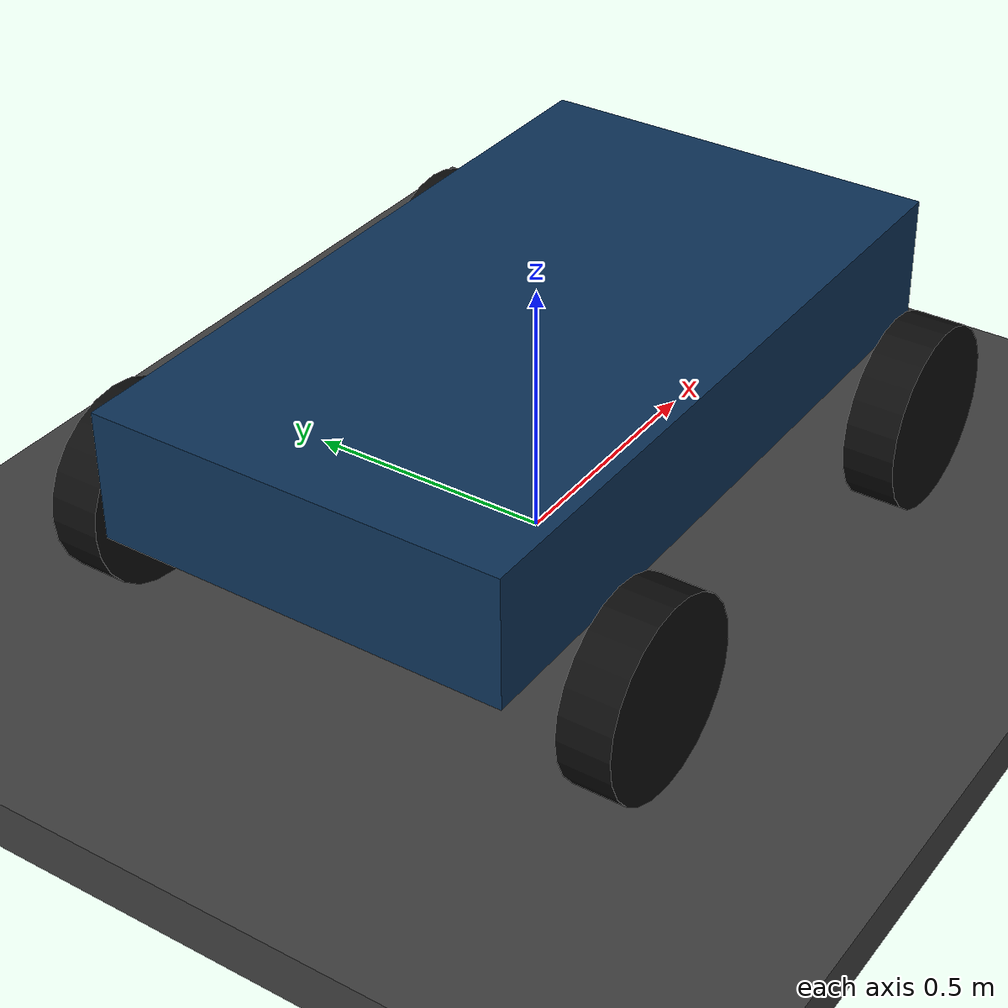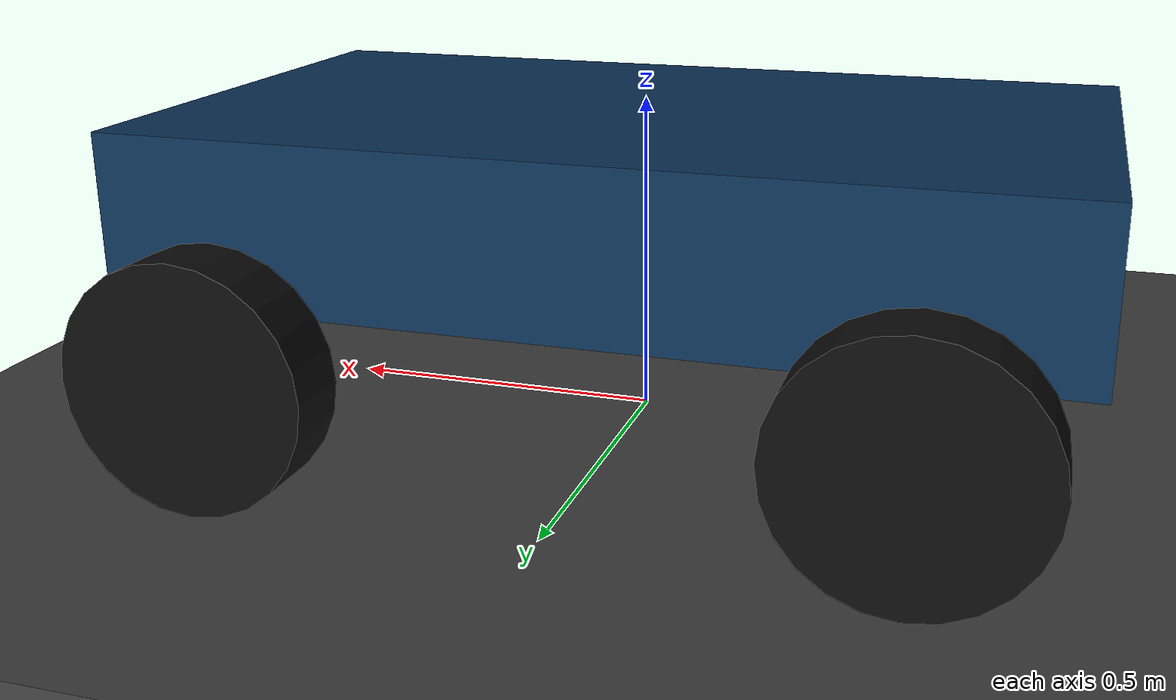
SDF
<?xml version="1.0" encoding="UTF-8"?>
<sdf version="1.9">
  <world name="rover_world">

    <gravity>0 0 -9.8</gravity>
    <magnetic_field>6e-6 2.3e-5 -4.2e-5</magnetic_field>

    <physics name="1ms" type="ode">
      <max_step_size>0.001</max_step_size>
      <real_time_factor>1</real_time_factor>
      <real_time_update_rate>1000</real_time_update_rate>
    </physics>

    <scene>
      <ambient>0.4 0.4 0.4 1</ambient>
      <background>0.7 0.75 0.8 1</background>
      <shadows>true</shadows>
    </scene>

    <plugin filename="gz-sim-physics-system"
            name="gz::sim::systems::Physics">
      <engine>
        <filename>gz-physics-dartsim-plugin</filename>
      </engine>
    </plugin>
    <plugin filename="gz-sim-user-commands-system"
            name="gz::sim::systems::UserCommands"/>
    <plugin filename="gz-sim-scene-broadcaster-system"
            name="gz::sim::systems::SceneBroadcaster"/>
    <plugin filename="gz-sim-imu-system"
            name="gz::sim::systems::Imu"/>

    <!-- Keyboard → /cmd_vel  (enable "Key Publisher" in Gazebo GUI) -->
    <!-- Arrow Up / W -->
    <plugin filename="gz-sim-triggered-publisher-system"
            name="gz::sim::systems::TriggeredPublisher">
      <input type="gz.msgs.Int32" topic="/keyboard/keypress">
        <match field="data">16777235</match>
      </input>
      <output type="gz.msgs.Twist" topic="/cmd_vel">
        linear: {x: 0.8}, angular: {z: 0.0}
      </output>
    </plugin>
    <plugin filename="gz-sim-triggered-publisher-system"
            name="gz::sim::systems::TriggeredPublisher">
      <input type="gz.msgs.Int32" topic="/keyboard/keypress">
        <match field="data">87</match>
      </input>
      <output type="gz.msgs.Twist" topic="/cmd_vel">
        linear: {x: 0.8}, angular: {z: 0.0}
      </output>
    </plugin>
    <!-- Arrow Down / S -->
    <plugin filename="gz-sim-triggered-publisher-system"
            name="gz::sim::systems::TriggeredPublisher">
      <input type="gz.msgs.Int32" topic="/keyboard/keypress">
        <match field="data">16777237</match>
      </input>
      <output type="gz.msgs.Twist" topic="/cmd_vel">
        linear: {x: -0.8}, angular: {z: 0.0}
      </output>
    </plugin>
    <plugin filename="gz-sim-triggered-publisher-system"
            name="gz::sim::systems::TriggeredPublisher">
      <input type="gz.msgs.Int32" topic="/keyboard/keypress">
        <match field="data">83</match>
      </input>
      <output type="gz.msgs.Twist" topic="/cmd_vel">
        linear: {x: -0.8}, angular: {z: 0.0}
      </output>
    </plugin>
    <!-- Arrow Left / A -->
    <plugin filename="gz-sim-triggered-publisher-system"
            name="gz::sim::systems::TriggeredPublisher">
      <input type="gz.msgs.Int32" topic="/keyboard/keypress">
        <match field="data">16777234</match>
      </input>
      <output type="gz.msgs.Twist" topic="/cmd_vel">
        linear: {x: 0.0}, angular: {z: 0.8}
      </output>
    </plugin>
    <plugin filename="gz-sim-triggered-publisher-system"
            name="gz::sim::systems::TriggeredPublisher">
      <input type="gz.msgs.Int32" topic="/keyboard/keypress">
        <match field="data">65</match>
      </input>
      <output type="gz.msgs.Twist" topic="/cmd_vel">
        linear: {x: 0.0}, angular: {z: 0.8}
      </output>
    </plugin>
    <!-- Arrow Right / D -->
    <plugin filename="gz-sim-triggered-publisher-system"
            name="gz::sim::systems::TriggeredPublisher">
      <input type="gz.msgs.Int32" topic="/keyboard/keypress">
        <match field="data">16777236</match>
      </input>
      <output type="gz.msgs.Twist" topic="/cmd_vel">
        linear: {x: 0.0}, angular: {z: -0.8}
      </output>
    </plugin>
    <plugin filename="gz-sim-triggered-publisher-system"
            name="gz::sim::systems::TriggeredPublisher">
      <input type="gz.msgs.Int32" topic="/keyboard/keypress">
        <match field="data">68</match>
      </input>
      <output type="gz.msgs.Twist" topic="/cmd_vel">
        linear: {x: 0.0}, angular: {z: -0.8}
      </output>
    </plugin>
    <!-- Space = stop -->
    <plugin filename="gz-sim-triggered-publisher-system"
            name="gz::sim::systems::TriggeredPublisher">
      <input type="gz.msgs.Int32" topic="/keyboard/keypress">
        <match field="data">32</match>
      </input>
      <output type="gz.msgs.Twist" topic="/cmd_vel">
        linear: {x: 0.0}, angular: {z: 0.0}
      </output>
    </plugin>

    <model name="ground">
      <static>true</static>
      <pose>0 0 -0.05 0 0 0</pose>
      <link name="link">
        <collision name="collision">
          <geometry>
            <box>
              <size>100 100 0.1</size>
            </box>
          </geometry>
          <surface>
            <friction>
              <ode>
                <mu>1.0</mu>
                <mu2>1.0</mu2>
              </ode>
            </friction>
          </surface>
        </collision>
        <visual name="visual">
          <geometry>
            <box>
              <size>100 100 0.1</size>
            </box>
          </geometry>
          <material>
            <ambient>0.15 0.15 0.15 1</ambient>
            <diffuse>0.25 0.25 0.25 1</diffuse>
            <specular>0.05 0.05 0.05 1</specular>
          </material>
        </visual>
      </link>
    </model>

    <light name="sun" type="directional">
      <cast_shadows>true</cast_shadows>
      <pose>0 0 10 0 0 0</pose>
      <diffuse>0.8 0.8 0.8 1</diffuse>
      <specular>0.2 0.2 0.2 1</specular>
      <direction>-0.5 -0.5 -1</direction>
    </light>

    <model name="rover">
      <pose>0 0 0.30 0 0 0</pose>
      <self_collide>false</self_collide>

      <link name="base_link">
        <inertial>
          <mass>8.0</mass>
          <inertia>
            <ixx>0.47</ixx>
            <iyy>1.35</iyy>
            <izz>1.73</izz>
            <ixy>0</ixy>
            <ixz>0</ixz>
            <iyz>0</iyz>
          </inertia>
        </inertial>
        <collision name="base_collision">
          <pose>0 0 0.06 0 0 0</pose>
          <geometry>
            <box>
              <size>1.4 0.8 0.25</size>
            </box>
          </geometry>
        </collision>
        <visual name="base_visual">
          <pose>0 0 0.06 0 0 0</pose>
          <geometry>
            <box>
              <size>1.4 0.8 0.25</size>
            </box>
          </geometry>
          <material>
            <ambient>0.05 0.10 0.15 1</ambient>
            <diffuse>0.05 0.20 0.35 1</diffuse>
          </material>
        </visual>
      </link>

      <link name="left_front_wheel">
        <pose relative_to="base_link">0.48 0.52 -0.12 -1.5708 0 0</pose>
        <inertial>
          <mass>0.8</mass>
          <inertia>
            <ixx>0.007</ixx>
            <iyy>0.007</iyy>
            <izz>0.013</izz>
            <ixy>0</ixy>
            <ixz>0</ixz>
            <iyz>0</iyz>
          </inertia>
        </inertial>
        <collision name="collision">
          <geometry>
            <sphere>
              <radius>0.18</radius>
            </sphere>
          </geometry>
          <surface>
            <friction>
              <ode>
                <mu>1.0</mu>
                <mu2>0.5</mu2>
                <slip1>0.02</slip1>
                <slip2>0.02</slip2>
              </ode>
            </friction>
            <contact>
              <ode>
                <kp>1e5</kp>
                <kd>1</kd>
                <max_vel>0.5</max_vel>
                <min_depth>0.001</min_depth>
              </ode>
            </contact>
          </surface>
        </collision>
        <visual name="visual">
          <geometry>
            <cylinder>
              <radius>0.18</radius>
              <length>0.10</length>
            </cylinder>
          </geometry>
          <material>
            <ambient>0.02 0.02 0.02 1</ambient>
            <diffuse>0.05 0.05 0.05 1</diffuse>
          </material>
        </visual>
      </link>

      <link name="left_rear_wheel">
        <pose relative_to="base_link">-0.48 0.52 -0.12 -1.5708 0 0</pose>
        <inertial>
          <mass>0.8</mass>
          <inertia>
            <ixx>0.007</ixx>
            <iyy>0.007</iyy>
            <izz>0.013</izz>
            <ixy>0</ixy>
            <ixz>0</ixz>
            <iyz>0</iyz>
          </inertia>
        </inertial>
        <collision name="collision">
          <geometry>
            <sphere>
              <radius>0.18</radius>
            </sphere>
          </geometry>
          <surface>
            <friction>
              <ode>
                <mu>1.0</mu>
                <mu2>0.5</mu2>
                <slip1>0.02</slip1>
                <slip2>0.02</slip2>
              </ode>
            </friction>
            <contact>
              <ode>
                <kp>1e5</kp>
                <kd>1</kd>
                <max_vel>0.5</max_vel>
                <min_depth>0.001</min_depth>
              </ode>
            </contact>
          </surface>
        </collision>
        <visual name="visual">
          <geometry>
            <cylinder>
              <radius>0.18</radius>
              <length>0.10</length>
            </cylinder>
          </geometry>
          <material>
            <ambient>0.02 0.02 0.02 1</ambient>
            <diffuse>0.05 0.05 0.05 1</diffuse>
          </material>
        </visual>
      </link>

      <link name="right_front_wheel">
        <pose relative_to="base_link">0.48 -0.52 -0.12 -1.5708 0 0</pose>
        <inertial>
          <mass>0.8</mass>
          <inertia>
            <ixx>0.007</ixx>
            <iyy>0.007</iyy>
            <izz>0.013</izz>
            <ixy>0</ixy>
            <ixz>0</ixz>
            <iyz>0</iyz>
          </inertia>
        </inertial>
        <collision name="collision">
          <geometry>
            <sphere>
              <radius>0.18</radius>
            </sphere>
          </geometry>
          <surface>
            <friction>
              <ode>
                <mu>1.0</mu>
                <mu2>0.5</mu2>
                <slip1>0.02</slip1>
                <slip2>0.02</slip2>
              </ode>
            </friction>
            <contact>
              <ode>
                <kp>1e5</kp>
                <kd>1</kd>
                <max_vel>0.5</max_vel>
                <min_depth>0.001</min_depth>
              </ode>
            </contact>
          </surface>
        </collision>
        <visual name="visual">
          <geometry>
            <cylinder>
              <radius>0.18</radius>
              <length>0.10</length>
            </cylinder>
          </geometry>
          <material>
            <ambient>0.02 0.02 0.02 1</ambient>
            <diffuse>0.05 0.05 0.05 1</diffuse>
          </material>
        </visual>
      </link>

      <link name="right_rear_wheel">
        <pose relative_to="base_link">-0.48 -0.52 -0.12 -1.5708 0 0</pose>
        <inertial>
          <mass>0.8</mass>
          <inertia>
            <ixx>0.007</ixx>
            <iyy>0.007</iyy>
            <izz>0.013</izz>
            <ixy>0</ixy>
            <ixz>0</ixz>
            <iyz>0</iyz>
          </inertia>
        </inertial>
        <collision name="collision">
          <geometry>
            <sphere>
              <radius>0.18</radius>
            </sphere>
          </geometry>
          <surface>
            <friction>
              <ode>
                <mu>1.0</mu>
                <mu2>0.5</mu2>
                <slip1>0.02</slip1>
                <slip2>0.02</slip2>
              </ode>
            </friction>
            <contact>
              <ode>
                <kp>1e5</kp>
                <kd>1</kd>
                <max_vel>0.5</max_vel>
                <min_depth>0.001</min_depth>
              </ode>
            </contact>
          </surface>
        </collision>
        <visual name="visual">
          <geometry>
            <cylinder>
              <radius>0.18</radius>
              <length>0.10</length>
            </cylinder>
          </geometry>
          <material>
            <ambient>0.02 0.02 0.02 1</ambient>
            <diffuse>0.05 0.05 0.05 1</diffuse>
          </material>
        </visual>
      </link>

      <joint name="left_front_wheel_joint" type="revolute">
        <parent>base_link</parent>
        <child>left_front_wheel</child>
        <axis>
          <xyz expressed_in="__model__">0 1 0</xyz>
          <limit>
            <lower>-1.79769e+308</lower>
            <upper>1.79769e+308</upper>
          </limit>
          <dynamics>
            <damping>0.05</damping>
            <friction>0.0</friction>
          </dynamics>
        </axis>
      </joint>

      <joint name="left_rear_wheel_joint" type="revolute">
        <parent>base_link</parent>
        <child>left_rear_wheel</child>
        <axis>
          <xyz expressed_in="__model__">0 1 0</xyz>
          <limit>
            <lower>-1.79769e+308</lower>
            <upper>1.79769e+308</upper>
          </limit>
          <dynamics>
            <damping>0.05</damping>
            <friction>0.0</friction>
          </dynamics>
        </axis>
      </joint>

      <joint name="right_front_wheel_joint" type="revolute">
        <parent>base_link</parent>
        <child>right_front_wheel</child>
        <axis>
          <xyz expressed_in="__model__">0 1 0</xyz>
          <limit>
            <lower>-1.79769e+308</lower>
            <upper>1.79769e+308</upper>
          </limit>
          <dynamics>
            <damping>0.05</damping>
            <friction>0.0</friction>
          </dynamics>
        </axis>
      </joint>

      <joint name="right_rear_wheel_joint" type="revolute">
        <parent>base_link</parent>
        <child>right_rear_wheel</child>
        <axis>
          <xyz expressed_in="__model__">0 1 0</xyz>
          <limit>
            <lower>-1.79769e+308</lower>
            <upper>1.79769e+308</upper>
          </limit>
          <dynamics>
            <damping>0.05</damping>
            <friction>0.0</friction>
          </dynamics>
        </axis>
      </joint>

      <plugin filename="gz-sim-diff-drive-system"
              name="gz::sim::systems::DiffDrive">
        <left_joint>left_front_wheel_joint</left_joint>
        <left_joint>left_rear_wheel_joint</left_joint>
        <right_joint>right_front_wheel_joint</right_joint>
        <right_joint>right_rear_wheel_joint</right_joint>
        <wheel_separation>1.04</wheel_separation>
        <wheel_radius>0.18</wheel_radius>
        <topic>/cmd_vel</topic>
        <odom_topic>/odom</odom_topic>
        <odom_publish_frequency>50</odom_publish_frequency>
        <frame_id>odom</frame_id>
        <child_frame_id>base_link</child_frame_id>
        <min_linear_velocity>-2</min_linear_velocity>
        <max_linear_velocity>2</max_linear_velocity>
        <min_angular_velocity>-2</min_angular_velocity>
        <max_angular_velocity>2</max_angular_velocity>
      </plugin>
    </model>

  </world>
</sdf>
